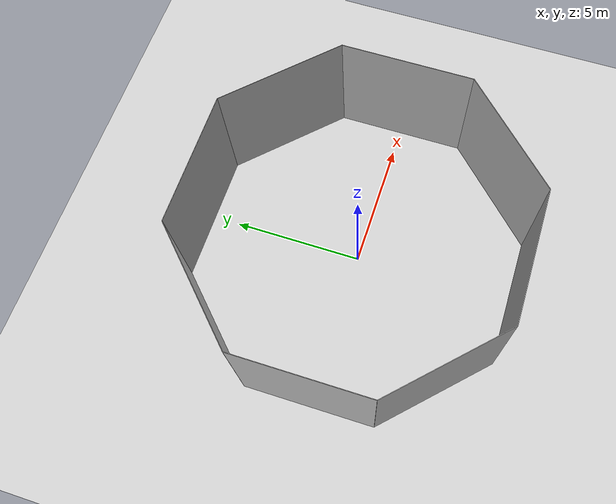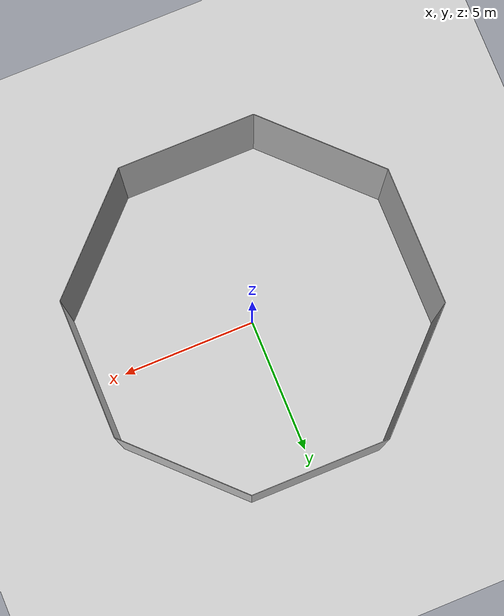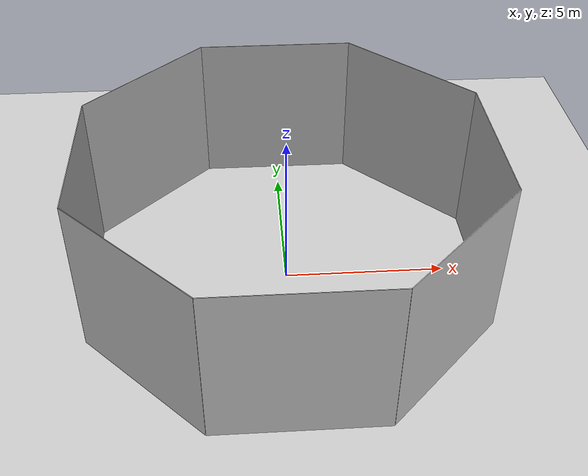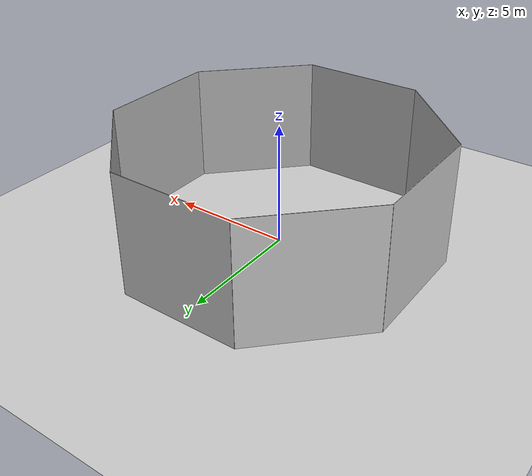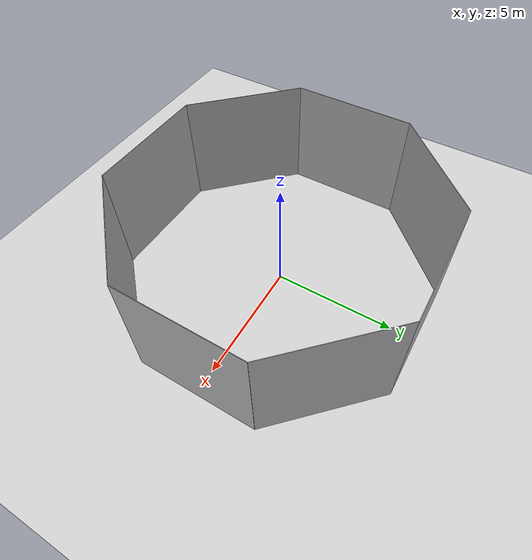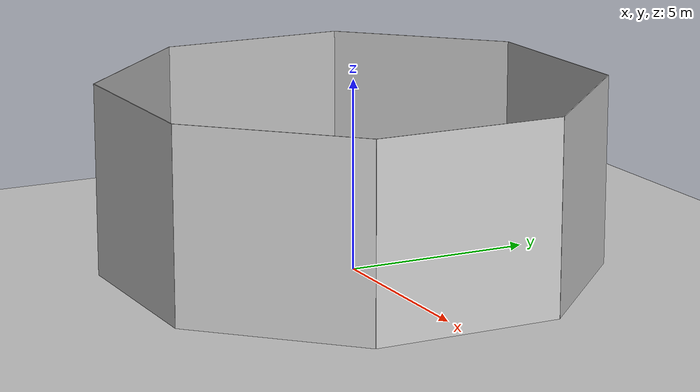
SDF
<?xml version="1.0"?>
<sdf version="1.4">
  <world name="target">
    <include>
      <uri>model://ground_plane</uri>
    </include>
    <include>
      <uri>model://sun</uri>
    </include>
    <model name="targetN">
      <pose>6.036 0 2.5  1.5708 0 -1.5708</pose>
        <static>true</static>
        <link name="body">
          <visual name="visual">
            <geometry>
              <mesh>
                <uri>model://full_target.dae</uri>
                <scale> 0.01 0.01 0.01 </scale>
              </mesh>
            </geometry>
          </visual>
        </link>
    </model>
    <model name="targetNE">
      <pose>4.2681 4.2681 2.5  1.5708 0 -0.7854</pose>
        <static>true</static>
        <link name="body">
          <visual name="visual">
            <geometry>
              <mesh>
                <uri>model://full_target.dae</uri>
                <scale> 0.01 0.01 0.01 </scale>
              </mesh>
            </geometry>
          </visual>
        </link>
    </model>
    <model name="targetE">
      <pose>0 6.036 2.5  1.5708 0 0</pose>
      <static>true</static>
      <link name="body">
        <visual name="visual">
          <geometry>
            <mesh>
              <uri>model://full_target.dae</uri>
              <scale> 0.01 0.01 0.01 </scale>
            </mesh>
          </geometry>
        </visual>
      </link>
    </model>
    <model name="targetSE">
      <pose>-4.2681 4.2681 2.5  1.5708 0 0.7854</pose>
      <static>true</static>
      <link name="body">
        <visual name="visual">
          <geometry>
            <mesh>
              <uri>model://full_target.dae</uri>
              <scale> 0.01 0.01 0.01 </scale>
            </mesh>
          </geometry>
        </visual>
      </link>
    </model>
    <model name="targetS">
      <pose>-6.036 0 2.5  1.5708 0 1.5708</pose>
      <static>true</static>
      <link name="body">
        <visual name="visual">
          <geometry>
            <mesh>
              <uri>model://full_target.dae</uri>
              <scale> 0.01 0.01 0.01 </scale>
            </mesh>
          </geometry>
        </visual>
      </link>
    </model>
    <model name="targetSW">
      <pose>-4.2681 -4.2681 2.5  1.5708 0 2.3562</pose>
      <static>true</static>
      <link name="body">
        <visual name="visual">
          <geometry>
            <mesh>
              <uri>model://full_target.dae</uri>
              <scale> 0.01 0.01 0.01 </scale>
            </mesh>
          </geometry>
        </visual>
      </link>
    </model>
    <model name="targetW">
      <pose>0 -6.036 2.5  1.5708 0 3.14159</pose>
        <static>true</static>
        <link name="body">
          <visual name="visual">
            <geometry>
              <mesh>
                <uri>model://full_target.dae</uri>
                <scale> 0.01 0.01 0.01 </scale>
              </mesh>
            </geometry>
          </visual>
        </link>
    </model>
    <model name="targetNW">
      <pose>4.2681 -4.2681 2.5  1.5708 0 -2.3562</pose>
      <static>true</static>
      <link name="body">
        <visual name="visual">
          <geometry>
            <mesh>
              <uri>model://full_target.dae</uri>
              <scale> 0.01 0.01 0.01 </scale>
            </mesh>
          </geometry>
        </visual>
      </link>
    </model>

  </world>
</sdf>
